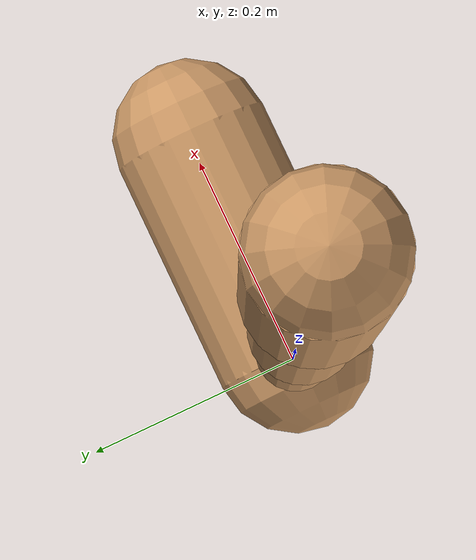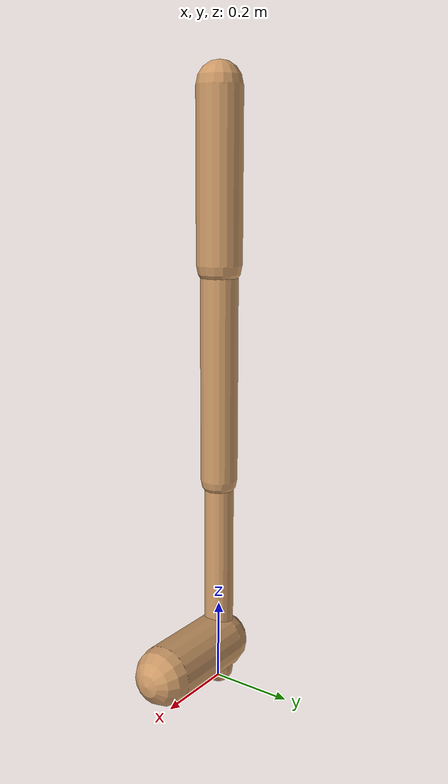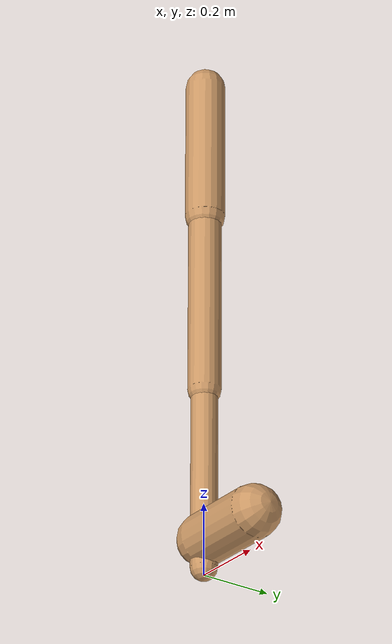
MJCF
<mujoco model="walker2d">
  <compiler angle="degree" coordinate="global" inertiafromgeom="true" />
  <default>
    <joint armature="0.01" damping=".1" limited="true" />
    <geom conaffinity="0" condim="3" contype="1" density="1000" friction="0.8 .1 .1" rgba="0.8 0.6 .4 1" />
  </default>
  <option integrator="RK4" timestep="0.002" />
  <worldbody>

    <body name="torso" pos="0 0 0.1491190871305833">
      <joint armature="0" axis="1 0 0" damping="0" limited="false" name="ignorex" pos="0 0 0" stiffness="0" type="slide" />
      <joint armature="0" axis="0 0 1" damping="0" limited="false" name="ignorez" pos="0 0 0" ref="1.25" stiffness="0" type="slide" />
      <joint armature="0" axis="0 1 0" damping="0" limited="false" name="ignorey" pos="0 0 0" stiffness="0" type="hinge" />
      <geom fromto="0 0 1.45 0 0 1.05" name="torso_geom" size="0.05412826381999698" type="capsule" />
      <body name="thigh">
        <joint axis="0 -1 0" name="thigh_joint" pos="0 0 1.05" range="-150 0" type="hinge" />
        <geom fromto="0.0 0.0 1.05 0.0 0.0 0.5293646429381447" name="thigh_geom" size="0.04478126792405606" type="capsule" />
        <body name="leg" pos="0.0 0.0 -0.07063535706185531">
          <joint axis="0 -1 0" name="leg_joint" pos="0 0 0.6" range="-150 0" type="hinge" />
          <geom fromto="0.0 0.0 0.6 0.0 0.0 0.021516269931271953" name="leg_geom" size="0.03582501433924484" type="capsule" />
          <body name="foot" pos="0.0 0.0 -0.07848373006872805">
            <joint axis="0 -1 0" name="foot_joint" pos="0 0 0.1" range="-45 45" type="hinge" />
            <geom fromto="-0.0 0.0 0.1 0.21707901290706785 0.0 0.1" name="foot_geom" size="0.07126843281298767" type="capsule" />
          </body>
        </body>
      </body>

      <body name="thigh_left">
        <joint axis="0 -1 0" name="thigh_left_joint" pos="0 0 1.05" range="-150 0" type="hinge" />
        <geom fromto="0.0 0.0 1.05 0.0 0.0 0.5293646429381447" name="thigh_left_geom" rgba=".7 .3 .6 1" size="0.04478126792405606" type="capsule" />
        <body name="leg_left" pos="0.0 0.0 -0.07063535706185531">
          <joint axis="0 -1 0" name="leg_left_joint" pos="0 0 0.6" range="-150 0" type="hinge" />
          <geom fromto="0.0 0.0 0.6 0.0 0.0 0.021516269931271953" name="leg_left_geom" rgba=".7 .3 .6 1" size="0.03582501433924484" type="capsule" />
          <body name="foot_left" pos="0.0 0.0 -0.07848373006872805">
            <joint axis="0 -1 0" name="foot_left_joint" pos="0 0 0.1" range="-45 45" type="hinge" />
            <geom fromto="-0.0 0.0 0.1 0.21707901290706785 0.0 0.1" name="foot_left_geom" rgba=".7 .3 .6 1" size="0.07126843281298767" type="capsule" />
          </body>
        </body>
      </body>
    </body>
  </worldbody>
  <actuator>

    <motor ctrllimited="true" ctrlrange="-1.0 1.0" gear="100" joint="thigh_joint" />
    <motor ctrllimited="true" ctrlrange="-1.0 1.0" gear="100" joint="leg_joint" />
    <motor ctrllimited="true" ctrlrange="-1.0 1.0" gear="100" joint="foot_joint" />
    <motor ctrllimited="true" ctrlrange="-1.0 1.0" gear="100" joint="thigh_left_joint" />
    <motor ctrllimited="true" ctrlrange="-1.0 1.0" gear="100" joint="leg_left_joint" />
    <motor ctrllimited="true" ctrlrange="-1.0 1.0" gear="100" joint="foot_left_joint" />

  </actuator>
</mujoco>
